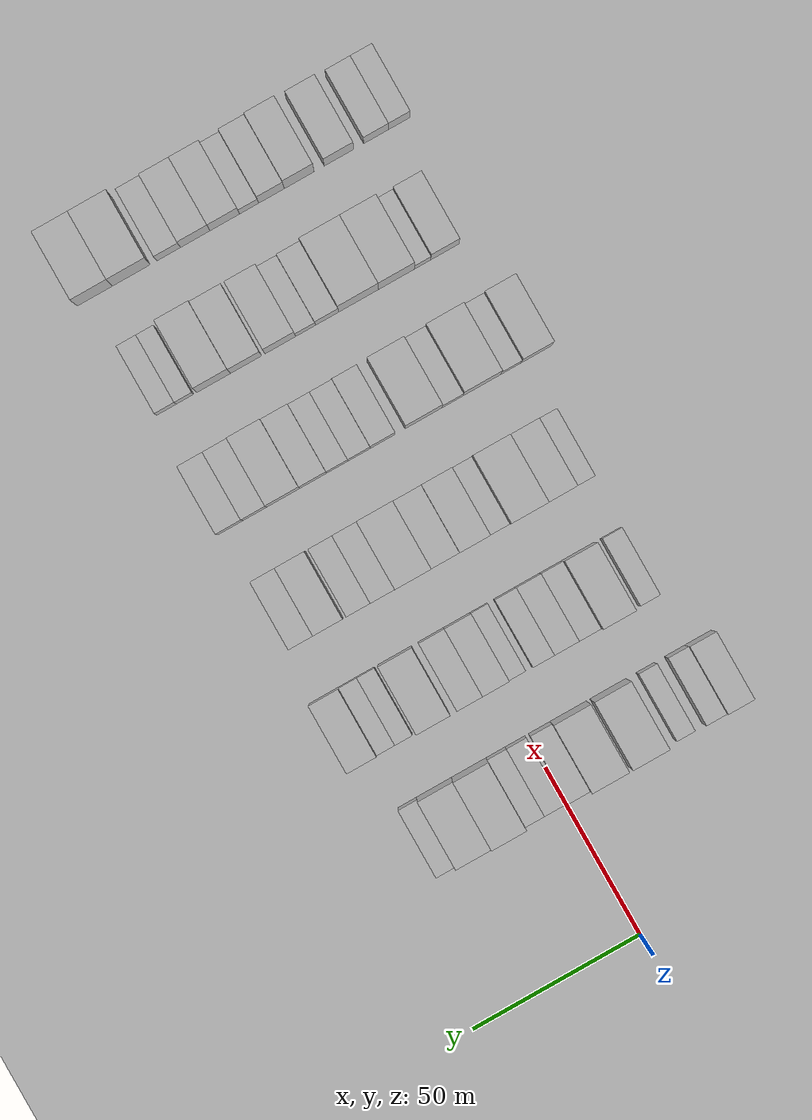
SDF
<sdf version="1.6">
 <world name="default">
  <include><name>ground_plane_1</name><uri>model://HANNAS_ground_plane</uri></include>
  <include>
   <name>ground_plane_2</name>
   <uri>model://HANNAS_ground_plane</uri>
   <pose>100 0 0  0 0 0</pose>
  </include>
  <model name="building_56">
   <static>1</static>
   <pose>50.0000 -51.3023 0 0.000000 0.000000 0.000000</pose>
   <link name="link">
    <pose>0 0 9.00 0 0 0</pose>
    <collision name="collision"><geometry><box><size>20.0000 7.8812 18.0000</size></box></geometry></collision>
    <visual name="visual">
     <cast_shadows>0</cast_shadows>
     <geometry><box><size>20.0000 7.8812 18.0000</size></box></geometry>
     <material>
      <script>
       <uri>model://HANNAS_wall/materials/scripts</uri>
       <uri>model://HANNAS_wall/materials/textures</uri>
       <name>vrc/HANNAS_wall</name>
      </script>
     </material>
    </visual>
   </link>
  </model>
  <model name="building_57">
   <static>1</static>
   <pose>50.0000 -44.3002 0 0.000000 0.000000 0.000000</pose>
   <link name="link">
    <pose>0 0 7.50 0 0 0</pose>
    <collision name="collision"><geometry><box><size>20.0000 6.1231 15.0000</size></box></geometry></collision>
    <visual name="visual">
     <cast_shadows>0</cast_shadows>
     <geometry><box><size>20.0000 6.1231 15.0000</size></box></geometry>
     <material>
      <script>
       <uri>model://HANNAS_wall/materials/scripts</uri>
       <uri>model://HANNAS_wall/materials/textures</uri>
       <name>vrc/HANNAS_wall</name>
      </script>
     </material>
    </visual>
   </link>
  </model>
  <model name="building_58">
   <static>1</static>
   <pose>50.0000 -35.5006 0 0.000000 0.000000 0.000000</pose>
   <link name="link">
    <pose>0 0 6.00 0 0 0</pose>
    <collision name="collision"><geometry><box><size>20.0000 5.4761 12.0000</size></box></geometry></collision>
    <visual name="visual">
     <cast_shadows>0</cast_shadows>
     <geometry><box><size>20.0000 5.4761 12.0000</size></box></geometry>
     <material>
      <script>
       <uri>model://HANNAS_wall/materials/scripts</uri>
       <uri>model://HANNAS_wall/materials/textures</uri>
       <name>vrc/HANNAS_wall</name>
      </script>
     </material>
    </visual>
   </link>
  </model>
  <model name="building_59">
   <static>1</static>
   <pose>50.0000 -24.3399 0 0.000000 0.000000 0.000000</pose>
   <link name="link">
    <pose>0 0 12.00 0 0 0</pose>
    <collision name="collision"><geometry><box><size>20.0000 10.8452 24.0000</size></box></geometry></collision>
    <visual name="visual">
     <cast_shadows>0</cast_shadows>
     <geometry><box><size>20.0000 10.8452 24.0000</size></box></geometry>
     <material>
      <script>
       <uri>model://HANNAS_wall/materials/scripts</uri>
       <uri>model://HANNAS_wall/materials/textures</uri>
       <name>vrc/HANNAS_wall</name>
      </script>
     </material>
    </visual>
   </link>
  </model>
  <model name="building_60">
   <static>1</static>
   <pose>50.0000 -12.4449 0 0.000000 0.000000 0.000000</pose>
   <link name="link">
    <pose>0 0 12.00 0 0 0</pose>
    <collision name="collision"><geometry><box><size>20.0000 10.9448 24.0000</size></box></geometry></collision>
    <visual name="visual">
     <cast_shadows>0</cast_shadows>
     <geometry><box><size>20.0000 10.9448 24.0000</size></box></geometry>
     <material>
      <script>
       <uri>model://HANNAS_wall/materials/scripts</uri>
       <uri>model://HANNAS_wall/materials/textures</uri>
       <name>vrc/HANNAS_wall</name>
      </script>
     </material>
    </visual>
   </link>
  </model>
  <model name="building_61">
   <static>1</static>
   <pose>50.0000 -3.7254 0 0.000000 0.000000 0.000000</pose>
   <link name="link">
    <pose>0 0 7.50 0 0 0</pose>
    <collision name="collision"><geometry><box><size>20.0000 6.4942 15.0000</size></box></geometry></collision>
    <visual name="visual">
     <cast_shadows>0</cast_shadows>
     <geometry><box><size>20.0000 6.4942 15.0000</size></box></geometry>
     <material>
      <script>
       <uri>model://HANNAS_wall/materials/scripts</uri>
       <uri>model://HANNAS_wall/materials/textures</uri>
       <name>vrc/HANNAS_wall</name>
      </script>
     </material>
    </visual>
   </link>
  </model>
  <model name="building_62">
   <static>1</static>
   <pose>50.0000 3.5018 0 0.000000 0.000000 0.000000</pose>
   <link name="link">
    <pose>0 0 6.00 0 0 0</pose>
    <collision name="collision"><geometry><box><size>20.0000 5.9601 12.0000</size></box></geometry></collision>
    <visual name="visual">
     <cast_shadows>0</cast_shadows>
     <geometry><box><size>20.0000 5.9601 12.0000</size></box></geometry>
     <material>
      <script>
       <uri>model://HANNAS_wall/materials/scripts</uri>
       <uri>model://HANNAS_wall/materials/textures</uri>
       <name>vrc/HANNAS_wall</name>
      </script>
     </material>
    </visual>
   </link>
  </model>
  <model name="building_63">
   <static>1</static>
   <pose>50.0000 9.3296 0 0.000000 0.000000 0.000000</pose>
   <link name="link">
    <pose>0 0 6.00 0 0 0</pose>
    <collision name="collision"><geometry><box><size>20.0000 5.6955 12.0000</size></box></geometry></collision>
    <visual name="visual">
     <cast_shadows>0</cast_shadows>
     <geometry><box><size>20.0000 5.6955 12.0000</size></box></geometry>
     <material>
      <script>
       <uri>model://HANNAS_wall/materials/scripts</uri>
       <uri>model://HANNAS_wall/materials/textures</uri>
       <name>vrc/HANNAS_wall</name>
      </script>
     </material>
    </visual>
   </link>
  </model>
  <model name="building_64">
   <static>1</static>
   <pose>50.0000 17.3628 0 0.000000 0.000000 0.000000</pose>
   <link name="link">
    <pose>0 0 12.00 0 0 0</pose>
    <collision name="collision"><geometry><box><size>20.0000 10.3709 24.0000</size></box></geometry></collision>
    <visual name="visual">
     <cast_shadows>0</cast_shadows>
     <geometry><box><size>20.0000 10.3709 24.0000</size></box></geometry>
     <material>
      <script>
       <uri>model://HANNAS_wall/materials/scripts</uri>
       <uri>model://HANNAS_wall/materials/textures</uri>
       <name>vrc/HANNAS_wall</name>
      </script>
     </material>
    </visual>
   </link>
  </model>
  <model name="building_65">
   <static>1</static>
   <pose>50.0000 27.7676 0 0.000000 0.000000 0.000000</pose>
   <link name="link">
    <pose>0 0 10.50 0 0 0</pose>
    <collision name="collision"><geometry><box><size>20.0000 10.4388 21.0000</size></box></geometry></collision>
    <visual name="visual">
     <cast_shadows>0</cast_shadows>
     <geometry><box><size>20.0000 10.4388 21.0000</size></box></geometry>
     <material>
      <script>
       <uri>model://HANNAS_wall/materials/scripts</uri>
       <uri>model://HANNAS_wall/materials/textures</uri>
       <name>vrc/HANNAS_wall</name>
      </script>
     </material>
    </visual>
   </link>
  </model>
  <model name="building_66">
   <static>1</static>
   <pose>50.0000 35.8073 0 0.000000 0.000000 0.000000</pose>
   <link name="link">
    <pose>0 0 6.00 0 0 0</pose>
    <collision name="collision"><geometry><box><size>20.0000 5.6406 12.0000</size></box></geometry></collision>
    <visual name="visual">
     <cast_shadows>0</cast_shadows>
     <geometry><box><size>20.0000 5.6406 12.0000</size></box></geometry>
     <material>
      <script>
       <uri>model://HANNAS_wall/materials/scripts</uri>
       <uri>model://HANNAS_wall/materials/textures</uri>
       <name>vrc/HANNAS_wall</name>
      </script>
     </material>
    </visual>
   </link>
  </model>
  <model name="building_189">
   <static>1</static>
   <pose>85.0000 -44.7876 0 0.000000 0.000000 0.000000</pose>
   <link name="link">
    <pose>0 0 6.00 0 0 0</pose>
    <collision name="collision"><geometry><box><size>20.0000 5.9261 12.0000</size></box></geometry></collision>
    <visual name="visual">
     <cast_shadows>0</cast_shadows>
     <geometry><box><size>20.0000 5.9261 12.0000</size></box></geometry>
     <material>
      <script>
       <uri>model://HANNAS_wall/materials/scripts</uri>
       <uri>model://HANNAS_wall/materials/textures</uri>
       <name>vrc/HANNAS_wall</name>
      </script>
     </material>
    </visual>
   </link>
  </model>
  <model name="building_190">
   <static>1</static>
   <pose>85.0000 -34.9461 0 0.000000 0.000000 0.000000</pose>
   <link name="link">
    <pose>0 0 12.00 0 0 0</pose>
    <collision name="collision"><geometry><box><size>20.0000 9.7570 24.0000</size></box></geometry></collision>
    <visual name="visual">
     <cast_shadows>0</cast_shadows>
     <geometry><box><size>20.0000 9.7570 24.0000</size></box></geometry>
     <material>
      <script>
       <uri>model://HANNAS_wall/materials/scripts</uri>
       <uri>model://HANNAS_wall/materials/textures</uri>
       <name>vrc/HANNAS_wall</name>
      </script>
     </material>
    </visual>
   </link>
  </model>
  <model name="building_191">
   <static>1</static>
   <pose>85.0000 -26.8211 0 0.000000 0.000000 0.000000</pose>
   <link name="link">
    <pose>0 0 7.50 0 0 0</pose>
    <collision name="collision"><geometry><box><size>20.0000 6.4931 15.0000</size></box></geometry></collision>
    <visual name="visual">
     <cast_shadows>0</cast_shadows>
     <geometry><box><size>20.0000 6.4931 15.0000</size></box></geometry>
     <material>
      <script>
       <uri>model://HANNAS_wall/materials/scripts</uri>
       <uri>model://HANNAS_wall/materials/textures</uri>
       <name>vrc/HANNAS_wall</name>
      </script>
     </material>
    </visual>
   </link>
  </model>
  <model name="building_192">
   <static>1</static>
   <pose>85.0000 -19.9076 0 0.000000 0.000000 0.000000</pose>
   <link name="link">
    <pose>0 0 7.50 0 0 0</pose>
    <collision name="collision"><geometry><box><size>20.0000 7.3338 15.0000</size></box></geometry></collision>
    <visual name="visual">
     <cast_shadows>0</cast_shadows>
     <geometry><box><size>20.0000 7.3338 15.0000</size></box></geometry>
     <material>
      <script>
       <uri>model://HANNAS_wall/materials/scripts</uri>
       <uri>model://HANNAS_wall/materials/textures</uri>
       <name>vrc/HANNAS_wall</name>
      </script>
     </material>
    </visual>
   </link>
  </model>
  <model name="building_193">
   <static>1</static>
   <pose>85.0000 -13.0487 0 0.000000 0.000000 0.000000</pose>
   <link name="link">
    <pose>0 0 7.50 0 0 0</pose>
    <collision name="collision"><geometry><box><size>20.0000 6.3840 15.0000</size></box></geometry></collision>
    <visual name="visual">
     <cast_shadows>0</cast_shadows>
     <geometry><box><size>20.0000 6.3840 15.0000</size></box></geometry>
     <material>
      <script>
       <uri>model://HANNAS_wall/materials/scripts</uri>
       <uri>model://HANNAS_wall/materials/textures</uri>
       <name>vrc/HANNAS_wall</name>
      </script>
     </material>
    </visual>
   </link>
  </model>
  <model name="building_194">
   <static>1</static>
   <pose>85.0000 -5.3381 0 0.000000 0.000000 0.000000</pose>
   <link name="link">
    <pose>0 0 6.00 0 0 0</pose>
    <collision name="collision"><geometry><box><size>20.0000 5.0373 12.0000</size></box></geometry></collision>
    <visual name="visual">
     <cast_shadows>0</cast_shadows>
     <geometry><box><size>20.0000 5.0373 12.0000</size></box></geometry>
     <material>
      <script>
       <uri>model://HANNAS_wall/materials/scripts</uri>
       <uri>model://HANNAS_wall/materials/textures</uri>
       <name>vrc/HANNAS_wall</name>
      </script>
     </material>
    </visual>
   </link>
  </model>
  <model name="building_195">
   <static>1</static>
   <pose>85.0000 1.1486 0 0.000000 0.000000 0.000000</pose>
   <link name="link">
    <pose>0 0 9.00 0 0 0</pose>
    <collision name="collision"><geometry><box><size>20.0000 7.9360 18.0000</size></box></geometry></collision>
    <visual name="visual">
     <cast_shadows>0</cast_shadows>
     <geometry><box><size>20.0000 7.9360 18.0000</size></box></geometry>
     <material>
      <script>
       <uri>model://HANNAS_wall/materials/scripts</uri>
       <uri>model://HANNAS_wall/materials/textures</uri>
       <name>vrc/HANNAS_wall</name>
      </script>
     </material>
    </visual>
   </link>
  </model>
  <model name="building_196">
   <static>1</static>
   <pose>85.0000 8.9107 0 0.000000 0.000000 0.000000</pose>
   <link name="link">
    <pose>0 0 9.00 0 0 0</pose>
    <collision name="collision"><geometry><box><size>20.0000 7.5881 18.0000</size></box></geometry></collision>
    <visual name="visual">
     <cast_shadows>0</cast_shadows>
     <geometry><box><size>20.0000 7.5881 18.0000</size></box></geometry>
     <material>
      <script>
       <uri>model://HANNAS_wall/materials/scripts</uri>
       <uri>model://HANNAS_wall/materials/textures</uri>
       <name>vrc/HANNAS_wall</name>
      </script>
     </material>
    </visual>
   </link>
  </model>
  <model name="building_197">
   <static>1</static>
   <pose>85.0000 19.7245 0 0.000000 0.000000 0.000000</pose>
   <link name="link">
    <pose>0 0 10.50 0 0 0</pose>
    <collision name="collision"><geometry><box><size>20.0000 10.0396 21.0000</size></box></geometry></collision>
    <visual name="visual">
     <cast_shadows>0</cast_shadows>
     <geometry><box><size>20.0000 10.0396 21.0000</size></box></geometry>
     <material>
      <script>
       <uri>model://HANNAS_wall/materials/scripts</uri>
       <uri>model://HANNAS_wall/materials/textures</uri>
       <name>vrc/HANNAS_wall</name>
      </script>
     </material>
    </visual>
   </link>
  </model>
  <model name="building_198">
   <static>1</static>
   <pose>85.0000 28.3742 0 0.000000 0.000000 0.000000</pose>
   <link name="link">
    <pose>0 0 6.00 0 0 0</pose>
    <collision name="collision"><geometry><box><size>20.0000 5.2596 12.0000</size></box></geometry></collision>
    <visual name="visual">
     <cast_shadows>0</cast_shadows>
     <geometry><box><size>20.0000 5.2596 12.0000</size></box></geometry>
     <material>
      <script>
       <uri>model://HANNAS_wall/materials/scripts</uri>
       <uri>model://HANNAS_wall/materials/textures</uri>
       <name>vrc/HANNAS_wall</name>
      </script>
     </material>
    </visual>
   </link>
  </model>
  <model name="building_199">
   <static>1</static>
   <pose>85.0000 33.7003 0 0.000000 0.000000 0.000000</pose>
   <link name="link">
    <pose>0 0 6.00 0 0 0</pose>
    <collision name="collision"><geometry><box><size>20.0000 5.3927 12.0000</size></box></geometry></collision>
    <visual name="visual">
     <cast_shadows>0</cast_shadows>
     <geometry><box><size>20.0000 5.3927 12.0000</size></box></geometry>
     <material>
      <script>
       <uri>model://HANNAS_wall/materials/scripts</uri>
       <uri>model://HANNAS_wall/materials/textures</uri>
       <name>vrc/HANNAS_wall</name>
      </script>
     </material>
    </visual>
   </link>
  </model>
  <model name="building_200">
   <static>1</static>
   <pose>85.0000 40.8074 0 0.000000 0.000000 0.000000</pose>
   <link name="link">
    <pose>0 0 9.00 0 0 0</pose>
    <collision name="collision"><geometry><box><size>20.0000 8.8215 18.0000</size></box></geometry></collision>
    <visual name="visual">
     <cast_shadows>0</cast_shadows>
     <geometry><box><size>20.0000 8.8215 18.0000</size></box></geometry>
     <material>
      <script>
       <uri>model://HANNAS_wall/materials/scripts</uri>
       <uri>model://HANNAS_wall/materials/textures</uri>
       <name>vrc/HANNAS_wall</name>
      </script>
     </material>
    </visual>
   </link>
  </model>
  <model name="building_311">
   <static>1</static>
   <pose>120.0000 -45.5590 0 0.000000 0.000000 0.000000</pose>
   <link name="link">
    <pose>0 0 6.00 0 0 0</pose>
    <collision name="collision"><geometry><box><size>20.0000 5.4686 12.0000</size></box></geometry></collision>
    <visual name="visual">
     <cast_shadows>0</cast_shadows>
     <geometry><box><size>20.0000 5.4686 12.0000</size></box></geometry>
     <material>
      <script>
       <uri>model://HANNAS_wall/materials/scripts</uri>
       <uri>model://HANNAS_wall/materials/textures</uri>
       <name>vrc/HANNAS_wall</name>
      </script>
     </material>
    </visual>
   </link>
  </model>
  <model name="building_312">
   <static>1</static>
   <pose>120.0000 -38.4567 0 0.000000 0.000000 0.000000</pose>
   <link name="link">
    <pose>0 0 9.00 0 0 0</pose>
    <collision name="collision"><geometry><box><size>20.0000 8.7360 18.0000</size></box></geometry></collision>
    <visual name="visual">
     <cast_shadows>0</cast_shadows>
     <geometry><box><size>20.0000 8.7360 18.0000</size></box></geometry>
     <material>
      <script>
       <uri>model://HANNAS_wall/materials/scripts</uri>
       <uri>model://HANNAS_wall/materials/textures</uri>
       <name>vrc/HANNAS_wall</name>
      </script>
     </material>
    </visual>
   </link>
  </model>
  <model name="building_313">
   <static>1</static>
   <pose>120.0000 -28.5551 0 0.000000 0.000000 0.000000</pose>
   <link name="link">
    <pose>0 0 12.00 0 0 0</pose>
    <collision name="collision"><geometry><box><size>20.0000 11.0670 24.0000</size></box></geometry></collision>
    <visual name="visual">
     <cast_shadows>0</cast_shadows>
     <geometry><box><size>20.0000 11.0670 24.0000</size></box></geometry>
     <material>
      <script>
       <uri>model://HANNAS_wall/materials/scripts</uri>
       <uri>model://HANNAS_wall/materials/textures</uri>
       <name>vrc/HANNAS_wall</name>
      </script>
     </material>
    </visual>
   </link>
  </model>
  <model name="building_314">
   <static>1</static>
   <pose>120.0000 -20.0378 0 0.000000 0.000000 0.000000</pose>
   <link name="link">
    <pose>0 0 6.00 0 0 0</pose>
    <collision name="collision"><geometry><box><size>20.0000 5.9676 12.0000</size></box></geometry></collision>
    <visual name="visual">
     <cast_shadows>0</cast_shadows>
     <geometry><box><size>20.0000 5.9676 12.0000</size></box></geometry>
     <material>
      <script>
       <uri>model://HANNAS_wall/materials/scripts</uri>
       <uri>model://HANNAS_wall/materials/textures</uri>
       <name>vrc/HANNAS_wall</name>
      </script>
     </material>
    </visual>
   </link>
  </model>
  <model name="building_315">
   <static>1</static>
   <pose>120.0000 -12.5089 0 0.000000 0.000000 0.000000</pose>
   <link name="link">
    <pose>0 0 10.50 0 0 0</pose>
    <collision name="collision"><geometry><box><size>20.0000 9.0902 21.0000</size></box></geometry></collision>
    <visual name="visual">
     <cast_shadows>0</cast_shadows>
     <geometry><box><size>20.0000 9.0902 21.0000</size></box></geometry>
     <material>
      <script>
       <uri>model://HANNAS_wall/materials/scripts</uri>
       <uri>model://HANNAS_wall/materials/textures</uri>
       <name>vrc/HANNAS_wall</name>
      </script>
     </material>
    </visual>
   </link>
  </model>
  <model name="building_316">
   <static>1</static>
   <pose>120.0000 -3.7594 0 0.000000 0.000000 0.000000</pose>
   <link name="link">
    <pose>0 0 9.00 0 0 0</pose>
    <collision name="collision"><geometry><box><size>20.0000 8.4089 18.0000</size></box></geometry></collision>
    <visual name="visual">
     <cast_shadows>0</cast_shadows>
     <geometry><box><size>20.0000 8.4089 18.0000</size></box></geometry>
     <material>
      <script>
       <uri>model://HANNAS_wall/materials/scripts</uri>
       <uri>model://HANNAS_wall/materials/textures</uri>
       <name>vrc/HANNAS_wall</name>
      </script>
     </material>
    </visual>
   </link>
  </model>
  <model name="building_317">
   <static>1</static>
   <pose>120.0000 5.7895 0 0.000000 0.000000 0.000000</pose>
   <link name="link">
    <pose>0 0 12.00 0 0 0</pose>
    <collision name="collision"><geometry><box><size>20.0000 10.6891 24.0000</size></box></geometry></collision>
    <visual name="visual">
     <cast_shadows>0</cast_shadows>
     <geometry><box><size>20.0000 10.6891 24.0000</size></box></geometry>
     <material>
      <script>
       <uri>model://HANNAS_wall/materials/scripts</uri>
       <uri>model://HANNAS_wall/materials/textures</uri>
       <name>vrc/HANNAS_wall</name>
      </script>
     </material>
    </visual>
   </link>
  </model>
  <model name="building_318">
   <static>1</static>
   <pose>120.0000 14.7538 0 0.000000 0.000000 0.000000</pose>
   <link name="link">
    <pose>0 0 9.00 0 0 0</pose>
    <collision name="collision"><geometry><box><size>20.0000 7.2395 18.0000</size></box></geometry></collision>
    <visual name="visual">
     <cast_shadows>0</cast_shadows>
     <geometry><box><size>20.0000 7.2395 18.0000</size></box></geometry>
     <material>
      <script>
       <uri>model://HANNAS_wall/materials/scripts</uri>
       <uri>model://HANNAS_wall/materials/textures</uri>
       <name>vrc/HANNAS_wall</name>
      </script>
     </material>
    </visual>
   </link>
  </model>
  <model name="building_319">
   <static>1</static>
   <pose>120.0000 21.9428 0 0.000000 0.000000 0.000000</pose>
   <link name="link">
    <pose>0 0 7.50 0 0 0</pose>
    <collision name="collision"><geometry><box><size>20.0000 7.1385 15.0000</size></box></geometry></collision>
    <visual name="visual">
     <cast_shadows>0</cast_shadows>
     <geometry><box><size>20.0000 7.1385 15.0000</size></box></geometry>
     <material>
      <script>
       <uri>model://HANNAS_wall/materials/scripts</uri>
       <uri>model://HANNAS_wall/materials/textures</uri>
       <name>vrc/HANNAS_wall</name>
      </script>
     </material>
    </visual>
   </link>
  </model>
  <model name="building_320">
   <static>1</static>
   <pose>120.0000 30.9087 0 0.000000 0.000000 0.000000</pose>
   <link name="link">
    <pose>0 0 9.00 0 0 0</pose>
    <collision name="collision"><geometry><box><size>20.0000 8.7934 18.0000</size></box></geometry></collision>
    <visual name="visual">
     <cast_shadows>0</cast_shadows>
     <geometry><box><size>20.0000 8.7934 18.0000</size></box></geometry>
     <material>
      <script>
       <uri>model://HANNAS_wall/materials/scripts</uri>
       <uri>model://HANNAS_wall/materials/textures</uri>
       <name>vrc/HANNAS_wall</name>
      </script>
     </material>
    </visual>
   </link>
  </model>
  <model name="building_321">
   <static>1</static>
   <pose>120.0000 38.9182 0 0.000000 0.000000 0.000000</pose>
   <link name="link">
    <pose>0 0 9.00 0 0 0</pose>
    <collision name="collision"><geometry><box><size>20.0000 7.2255 18.0000</size></box></geometry></collision>
    <visual name="visual">
     <cast_shadows>0</cast_shadows>
     <geometry><box><size>20.0000 7.2255 18.0000</size></box></geometry>
     <material>
      <script>
       <uri>model://HANNAS_wall/materials/scripts</uri>
       <uri>model://HANNAS_wall/materials/textures</uri>
       <name>vrc/HANNAS_wall</name>
      </script>
     </material>
    </visual>
   </link>
  </model>
  <model name="building_440">
   <static>1</static>
   <pose>155.0000 -51.0554 0 0.000000 0.000000 0.000000</pose>
   <link name="link">
    <pose>0 0 10.50 0 0 0</pose>
    <collision name="collision"><geometry><box><size>20.0000 9.1883 21.0000</size></box></geometry></collision>
    <visual name="visual">
     <cast_shadows>0</cast_shadows>
     <geometry><box><size>20.0000 9.1883 21.0000</size></box></geometry>
     <material>
      <script>
       <uri>model://HANNAS_wall/materials/scripts</uri>
       <uri>model://HANNAS_wall/materials/textures</uri>
       <name>vrc/HANNAS_wall</name>
      </script>
     </material>
    </visual>
   </link>
  </model>
  <model name="building_441">
   <static>1</static>
   <pose>155.0000 -43.3997 0 0.000000 0.000000 0.000000</pose>
   <link name="link">
    <pose>0 0 7.50 0 0 0</pose>
    <collision name="collision"><geometry><box><size>20.0000 6.1233 15.0000</size></box></geometry></collision>
    <visual name="visual">
     <cast_shadows>0</cast_shadows>
     <geometry><box><size>20.0000 6.1233 15.0000</size></box></geometry>
     <material>
      <script>
       <uri>model://HANNAS_wall/materials/scripts</uri>
       <uri>model://HANNAS_wall/materials/textures</uri>
       <name>vrc/HANNAS_wall</name>
      </script>
     </material>
    </visual>
   </link>
  </model>
  <model name="building_442">
   <static>1</static>
   <pose>155.0000 -34.7409 0 0.000000 0.000000 0.000000</pose>
   <link name="link">
    <pose>0 0 12.00 0 0 0</pose>
    <collision name="collision"><geometry><box><size>20.0000 11.1942 24.0000</size></box></geometry></collision>
    <visual name="visual">
     <cast_shadows>0</cast_shadows>
     <geometry><box><size>20.0000 11.1942 24.0000</size></box></geometry>
     <material>
      <script>
       <uri>model://HANNAS_wall/materials/scripts</uri>
       <uri>model://HANNAS_wall/materials/textures</uri>
       <name>vrc/HANNAS_wall</name>
      </script>
     </material>
    </visual>
   </link>
  </model>
  <model name="building_443">
   <static>1</static>
   <pose>155.0000 -25.9737 0 0.000000 0.000000 0.000000</pose>
   <link name="link">
    <pose>0 0 7.50 0 0 0</pose>
    <collision name="collision"><geometry><box><size>20.0000 6.3401 15.0000</size></box></geometry></collision>
    <visual name="visual">
     <cast_shadows>0</cast_shadows>
     <geometry><box><size>20.0000 6.3401 15.0000</size></box></geometry>
     <material>
      <script>
       <uri>model://HANNAS_wall/materials/scripts</uri>
       <uri>model://HANNAS_wall/materials/textures</uri>
       <name>vrc/HANNAS_wall</name>
      </script>
     </material>
    </visual>
   </link>
  </model>
  <model name="building_444">
   <static>1</static>
   <pose>155.0000 -17.3072 0 0.000000 0.000000 0.000000</pose>
   <link name="link">
    <pose>0 0 12.00 0 0 0</pose>
    <collision name="collision"><geometry><box><size>20.0000 10.9928 24.0000</size></box></geometry></collision>
    <visual name="visual">
     <cast_shadows>0</cast_shadows>
     <geometry><box><size>20.0000 10.9928 24.0000</size></box></geometry>
     <material>
      <script>
       <uri>model://HANNAS_wall/materials/scripts</uri>
       <uri>model://HANNAS_wall/materials/textures</uri>
       <name>vrc/HANNAS_wall</name>
      </script>
     </material>
    </visual>
   </link>
  </model>
  <model name="building_445">
   <static>1</static>
   <pose>155.0000 -5.1150 0 0.000000 0.000000 0.000000</pose>
   <link name="link">
    <pose>0 0 9.00 0 0 0</pose>
    <collision name="collision"><geometry><box><size>20.0000 7.3916 18.0000</size></box></geometry></collision>
    <visual name="visual">
     <cast_shadows>0</cast_shadows>
     <geometry><box><size>20.0000 7.3916 18.0000</size></box></geometry>
     <material>
      <script>
       <uri>model://HANNAS_wall/materials/scripts</uri>
       <uri>model://HANNAS_wall/materials/textures</uri>
       <name>vrc/HANNAS_wall</name>
      </script>
     </material>
    </visual>
   </link>
  </model>
  <model name="building_446">
   <static>1</static>
   <pose>155.0000 1.9009 0 0.000000 0.000000 0.000000</pose>
   <link name="link">
    <pose>0 0 7.50 0 0 0</pose>
    <collision name="collision"><geometry><box><size>20.0000 6.6403 15.0000</size></box></geometry></collision>
    <visual name="visual">
     <cast_shadows>0</cast_shadows>
     <geometry><box><size>20.0000 6.6403 15.0000</size></box></geometry>
     <material>
      <script>
       <uri>model://HANNAS_wall/materials/scripts</uri>
       <uri>model://HANNAS_wall/materials/textures</uri>
       <name>vrc/HANNAS_wall</name>
      </script>
     </material>
    </visual>
   </link>
  </model>
  <model name="building_447">
   <static>1</static>
   <pose>155.0000 8.4166 0 0.000000 0.000000 0.000000</pose>
   <link name="link">
    <pose>0 0 7.50 0 0 0</pose>
    <collision name="collision"><geometry><box><size>20.0000 6.3911 15.0000</size></box></geometry></collision>
    <visual name="visual">
     <cast_shadows>0</cast_shadows>
     <geometry><box><size>20.0000 6.3911 15.0000</size></box></geometry>
     <material>
      <script>
       <uri>model://HANNAS_wall/materials/scripts</uri>
       <uri>model://HANNAS_wall/materials/textures</uri>
       <name>vrc/HANNAS_wall</name>
      </script>
     </material>
    </visual>
   </link>
  </model>
  <model name="building_448">
   <static>1</static>
   <pose>155.0000 15.6134 0 0.000000 0.000000 0.000000</pose>
   <link name="link">
    <pose>0 0 9.00 0 0 0</pose>
    <collision name="collision"><geometry><box><size>20.0000 8.0024 18.0000</size></box></geometry></collision>
    <visual name="visual">
     <cast_shadows>0</cast_shadows>
     <geometry><box><size>20.0000 8.0024 18.0000</size></box></geometry>
     <material>
      <script>
       <uri>model://HANNAS_wall/materials/scripts</uri>
       <uri>model://HANNAS_wall/materials/textures</uri>
       <name>vrc/HANNAS_wall</name>
      </script>
     </material>
    </visual>
   </link>
  </model>
  <model name="building_449">
   <static>1</static>
   <pose>155.0000 24.5502 0 0.000000 0.000000 0.000000</pose>
   <link name="link">
    <pose>0 0 10.50 0 0 0</pose>
    <collision name="collision"><geometry><box><size>20.0000 9.8712 21.0000</size></box></geometry></collision>
    <visual name="visual">
     <cast_shadows>0</cast_shadows>
     <geometry><box><size>20.0000 9.8712 21.0000</size></box></geometry>
     <material>
      <script>
       <uri>model://HANNAS_wall/materials/scripts</uri>
       <uri>model://HANNAS_wall/materials/textures</uri>
       <name>vrc/HANNAS_wall</name>
      </script>
     </material>
    </visual>
   </link>
  </model>
  <model name="building_450">
   <static>1</static>
   <pose>155.0000 33.0891 0 0.000000 0.000000 0.000000</pose>
   <link name="link">
    <pose>0 0 9.00 0 0 0</pose>
    <collision name="collision"><geometry><box><size>20.0000 7.2066 18.0000</size></box></geometry></collision>
    <visual name="visual">
     <cast_shadows>0</cast_shadows>
     <geometry><box><size>20.0000 7.2066 18.0000</size></box></geometry>
     <material>
      <script>
       <uri>model://HANNAS_wall/materials/scripts</uri>
       <uri>model://HANNAS_wall/materials/textures</uri>
       <name>vrc/HANNAS_wall</name>
      </script>
     </material>
    </visual>
   </link>
  </model>
  <model name="building_451">
   <static>1</static>
   <pose>155.0000 40.4350 0 0.000000 0.000000 0.000000</pose>
   <link name="link">
    <pose>0 0 9.00 0 0 0</pose>
    <collision name="collision"><geometry><box><size>20.0000 7.4853 18.0000</size></box></geometry></collision>
    <visual name="visual">
     <cast_shadows>0</cast_shadows>
     <geometry><box><size>20.0000 7.4853 18.0000</size></box></geometry>
     <material>
      <script>
       <uri>model://HANNAS_wall/materials/scripts</uri>
       <uri>model://HANNAS_wall/materials/textures</uri>
       <name>vrc/HANNAS_wall</name>
      </script>
     </material>
    </visual>
   </link>
  </model>
  <model name="building_576">
   <static>1</static>
   <pose>190.0000 -43.5626 0 0.000000 0.000000 0.000000</pose>
   <link name="link">
    <pose>0 0 9.00 0 0 0</pose>
    <collision name="collision"><geometry><box><size>20.0000 8.4308 18.0000</size></box></geometry></collision>
    <visual name="visual">
     <cast_shadows>0</cast_shadows>
     <geometry><box><size>20.0000 8.4308 18.0000</size></box></geometry>
     <material>
      <script>
       <uri>model://HANNAS_wall/materials/scripts</uri>
       <uri>model://HANNAS_wall/materials/textures</uri>
       <name>vrc/HANNAS_wall</name>
      </script>
     </material>
    </visual>
   </link>
  </model>
  <model name="building_577">
   <static>1</static>
   <pose>190.0000 -36.8787 0 0.000000 0.000000 0.000000</pose>
   <link name="link">
    <pose>0 0 6.00 0 0 0</pose>
    <collision name="collision"><geometry><box><size>20.0000 4.9370 12.0000</size></box></geometry></collision>
    <visual name="visual">
     <cast_shadows>0</cast_shadows>
     <geometry><box><size>20.0000 4.9370 12.0000</size></box></geometry>
     <material>
      <script>
       <uri>model://HANNAS_wall/materials/scripts</uri>
       <uri>model://HANNAS_wall/materials/textures</uri>
       <name>vrc/HANNAS_wall</name>
      </script>
     </material>
    </visual>
   </link>
  </model>
  <model name="building_578">
   <static>1</static>
   <pose>190.0000 -29.0571 0 0.000000 0.000000 0.000000</pose>
   <link name="link">
    <pose>0 0 12.00 0 0 0</pose>
    <collision name="collision"><geometry><box><size>20.0000 10.7062 24.0000</size></box></geometry></collision>
    <visual name="visual">
     <cast_shadows>0</cast_shadows>
     <geometry><box><size>20.0000 10.7062 24.0000</size></box></geometry>
     <material>
      <script>
       <uri>model://HANNAS_wall/materials/scripts</uri>
       <uri>model://HANNAS_wall/materials/textures</uri>
       <name>vrc/HANNAS_wall</name>
      </script>
     </material>
    </visual>
   </link>
  </model>
  <model name="building_579">
   <static>1</static>
   <pose>190.0000 -17.7384 0 0.000000 0.000000 0.000000</pose>
   <link name="link">
    <pose>0 0 12.00 0 0 0</pose>
    <collision name="collision"><geometry><box><size>20.0000 11.9311 24.0000</size></box></geometry></collision>
    <visual name="visual">
     <cast_shadows>0</cast_shadows>
     <geometry><box><size>20.0000 11.9311 24.0000</size></box></geometry>
     <material>
      <script>
       <uri>model://HANNAS_wall/materials/scripts</uri>
       <uri>model://HANNAS_wall/materials/textures</uri>
       <name>vrc/HANNAS_wall</name>
      </script>
     </material>
    </visual>
   </link>
  </model>
  <model name="building_580">
   <static>1</static>
   <pose>190.0000 -8.3005 0 0.000000 0.000000 0.000000</pose>
   <link name="link">
    <pose>0 0 7.50 0 0 0</pose>
    <collision name="collision"><geometry><box><size>20.0000 6.9447 15.0000</size></box></geometry></collision>
    <visual name="visual">
     <cast_shadows>0</cast_shadows>
     <geometry><box><size>20.0000 6.9447 15.0000</size></box></geometry>
     <material>
      <script>
       <uri>model://HANNAS_wall/materials/scripts</uri>
       <uri>model://HANNAS_wall/materials/textures</uri>
       <name>vrc/HANNAS_wall</name>
      </script>
     </material>
    </visual>
   </link>
  </model>
  <model name="building_581">
   <static>1</static>
   <pose>190.0000 -1.8567 0 0.000000 0.000000 0.000000</pose>
   <link name="link">
    <pose>0 0 6.00 0 0 0</pose>
    <collision name="collision"><geometry><box><size>20.0000 5.9429 12.0000</size></box></geometry></collision>
    <visual name="visual">
     <cast_shadows>0</cast_shadows>
     <geometry><box><size>20.0000 5.9429 12.0000</size></box></geometry>
     <material>
      <script>
       <uri>model://HANNAS_wall/materials/scripts</uri>
       <uri>model://HANNAS_wall/materials/textures</uri>
       <name>vrc/HANNAS_wall</name>
      </script>
     </material>
    </visual>
   </link>
  </model>
  <model name="building_582">
   <static>1</static>
   <pose>190.0000 5.7015 0 0.000000 0.000000 0.000000</pose>
   <link name="link">
    <pose>0 0 10.50 0 0 0</pose>
    <collision name="collision"><geometry><box><size>20.0000 9.1736 21.0000</size></box></geometry></collision>
    <visual name="visual">
     <cast_shadows>0</cast_shadows>
     <geometry><box><size>20.0000 9.1736 21.0000</size></box></geometry>
     <material>
      <script>
       <uri>model://HANNAS_wall/materials/scripts</uri>
       <uri>model://HANNAS_wall/materials/textures</uri>
       <name>vrc/HANNAS_wall</name>
      </script>
     </material>
    </visual>
   </link>
  </model>
  <model name="building_583">
   <static>1</static>
   <pose>190.0000 15.9421 0 0.000000 0.000000 0.000000</pose>
   <link name="link">
    <pose>0 0 10.50 0 0 0</pose>
    <collision name="collision"><geometry><box><size>20.0000 9.3076 21.0000</size></box></geometry></collision>
    <visual name="visual">
     <cast_shadows>0</cast_shadows>
     <geometry><box><size>20.0000 9.3076 21.0000</size></box></geometry>
     <material>
      <script>
       <uri>model://HANNAS_wall/materials/scripts</uri>
       <uri>model://HANNAS_wall/materials/textures</uri>
       <name>vrc/HANNAS_wall</name>
      </script>
     </material>
    </visual>
   </link>
  </model>
  <model name="building_584">
   <static>1</static>
   <pose>190.0000 25.6205 0 0.000000 0.000000 0.000000</pose>
   <link name="link">
    <pose>0 0 12.00 0 0 0</pose>
    <collision name="collision"><geometry><box><size>20.0000 10.0492 24.0000</size></box></geometry></collision>
    <visual name="visual">
     <cast_shadows>0</cast_shadows>
     <geometry><box><size>20.0000 10.0492 24.0000</size></box></geometry>
     <material>
      <script>
       <uri>model://HANNAS_wall/materials/scripts</uri>
       <uri>model://HANNAS_wall/materials/textures</uri>
       <name>vrc/HANNAS_wall</name>
      </script>
     </material>
    </visual>
   </link>
  </model>
  <model name="building_585">
   <static>1</static>
   <pose>190.0000 34.2471 0 0.000000 0.000000 0.000000</pose>
   <link name="link">
    <pose>0 0 6.00 0 0 0</pose>
    <collision name="collision"><geometry><box><size>20.0000 5.2040 12.0000</size></box></geometry></collision>
    <visual name="visual">
     <cast_shadows>0</cast_shadows>
     <geometry><box><size>20.0000 5.2040 12.0000</size></box></geometry>
     <material>
      <script>
       <uri>model://HANNAS_wall/materials/scripts</uri>
       <uri>model://HANNAS_wall/materials/textures</uri>
       <name>vrc/HANNAS_wall</name>
      </script>
     </material>
    </visual>
   </link>
  </model>
  <model name="building_586">
   <static>1</static>
   <pose>190.0000 39.7811 0 0.000000 0.000000 0.000000</pose>
   <link name="link">
    <pose>0 0 6.00 0 0 0</pose>
    <collision name="collision"><geometry><box><size>20.0000 5.8639 12.0000</size></box></geometry></collision>
    <visual name="visual">
     <cast_shadows>0</cast_shadows>
     <geometry><box><size>20.0000 5.8639 12.0000</size></box></geometry>
     <material>
      <script>
       <uri>model://HANNAS_wall/materials/scripts</uri>
       <uri>model://HANNAS_wall/materials/textures</uri>
       <name>vrc/HANNAS_wall</name>
      </script>
     </material>
    </visual>
   </link>
  </model>
  <model name="building_697">
   <static>1</static>
   <pose>225.0000 -49.7849 0 0.000000 0.000000 0.000000</pose>
   <link name="link">
    <pose>0 0 7.50 0 0 0</pose>
    <collision name="collision"><geometry><box><size>20.0000 6.4155 15.0000</size></box></geometry></collision>
    <visual name="visual">
     <cast_shadows>0</cast_shadows>
     <geometry><box><size>20.0000 6.4155 15.0000</size></box></geometry>
     <material>
      <script>
       <uri>model://HANNAS_wall/materials/scripts</uri>
       <uri>model://HANNAS_wall/materials/textures</uri>
       <name>vrc/HANNAS_wall</name>
      </script>
     </material>
    </visual>
   </link>
  </model>
  <model name="building_698">
   <static>1</static>
   <pose>225.0000 -42.8376 0 0.000000 0.000000 0.000000</pose>
   <link name="link">
    <pose>0 0 7.50 0 0 0</pose>
    <collision name="collision"><geometry><box><size>20.0000 7.4789 15.0000</size></box></geometry></collision>
    <visual name="visual">
     <cast_shadows>0</cast_shadows>
     <geometry><box><size>20.0000 7.4789 15.0000</size></box></geometry>
     <material>
      <script>
       <uri>model://HANNAS_wall/materials/scripts</uri>
       <uri>model://HANNAS_wall/materials/textures</uri>
       <name>vrc/HANNAS_wall</name>
      </script>
     </material>
    </visual>
   </link>
  </model>
  <model name="building_699">
   <static>1</static>
   <pose>225.0000 -31.6937 0 0.000000 0.000000 0.000000</pose>
   <link name="link">
    <pose>0 0 9.00 0 0 0</pose>
    <collision name="collision"><geometry><box><size>20.0000 8.8090 18.0000</size></box></geometry></collision>
    <visual name="visual">
     <cast_shadows>0</cast_shadows>
     <geometry><box><size>20.0000 8.8090 18.0000</size></box></geometry>
     <material>
      <script>
       <uri>model://HANNAS_wall/materials/scripts</uri>
       <uri>model://HANNAS_wall/materials/textures</uri>
       <name>vrc/HANNAS_wall</name>
      </script>
     </material>
    </visual>
   </link>
  </model>
  <model name="building_700">
   <static>1</static>
   <pose>225.0000 -19.8062 0 0.000000 0.000000 0.000000</pose>
   <link name="link">
    <pose>0 0 10.50 0 0 0</pose>
    <collision name="collision"><geometry><box><size>20.0000 8.9658 21.0000</size></box></geometry></collision>
    <visual name="visual">
     <cast_shadows>0</cast_shadows>
     <geometry><box><size>20.0000 8.9658 21.0000</size></box></geometry>
     <material>
      <script>
       <uri>model://HANNAS_wall/materials/scripts</uri>
       <uri>model://HANNAS_wall/materials/textures</uri>
       <name>vrc/HANNAS_wall</name>
      </script>
     </material>
    </visual>
   </link>
  </model>
  <model name="building_701">
   <static>1</static>
   <pose>225.0000 -11.4830 0 0.000000 0.000000 0.000000</pose>
   <link name="link">
    <pose>0 0 9.00 0 0 0</pose>
    <collision name="collision"><geometry><box><size>20.0000 7.6807 18.0000</size></box></geometry></collision>
    <visual name="visual">
     <cast_shadows>0</cast_shadows>
     <geometry><box><size>20.0000 7.6807 18.0000</size></box></geometry>
     <material>
      <script>
       <uri>model://HANNAS_wall/materials/scripts</uri>
       <uri>model://HANNAS_wall/materials/textures</uri>
       <name>vrc/HANNAS_wall</name>
      </script>
     </material>
    </visual>
   </link>
  </model>
  <model name="building_702">
   <static>1</static>
   <pose>225.0000 -4.7768 0 0.000000 0.000000 0.000000</pose>
   <link name="link">
    <pose>0 0 6.00 0 0 0</pose>
    <collision name="collision"><geometry><box><size>20.0000 5.7316 12.0000</size></box></geometry></collision>
    <visual name="visual">
     <cast_shadows>0</cast_shadows>
     <geometry><box><size>20.0000 5.7316 12.0000</size></box></geometry>
     <material>
      <script>
       <uri>model://HANNAS_wall/materials/scripts</uri>
       <uri>model://HANNAS_wall/materials/textures</uri>
       <name>vrc/HANNAS_wall</name>
      </script>
     </material>
    </visual>
   </link>
  </model>
  <model name="building_703">
   <static>1</static>
   <pose>225.0000 2.5052 0 0.000000 0.000000 0.000000</pose>
   <link name="link">
    <pose>0 0 9.00 0 0 0</pose>
    <collision name="collision"><geometry><box><size>20.0000 8.8325 18.0000</size></box></geometry></collision>
    <visual name="visual">
     <cast_shadows>0</cast_shadows>
     <geometry><box><size>20.0000 8.8325 18.0000</size></box></geometry>
     <material>
      <script>
       <uri>model://HANNAS_wall/materials/scripts</uri>
       <uri>model://HANNAS_wall/materials/textures</uri>
       <name>vrc/HANNAS_wall</name>
      </script>
     </material>
    </visual>
   </link>
  </model>
  <model name="building_704">
   <static>1</static>
   <pose>225.0000 11.3438 0 0.000000 0.000000 0.000000</pose>
   <link name="link">
    <pose>0 0 9.00 0 0 0</pose>
    <collision name="collision"><geometry><box><size>20.0000 8.8447 18.0000</size></box></geometry></collision>
    <visual name="visual">
     <cast_shadows>0</cast_shadows>
     <geometry><box><size>20.0000 8.8447 18.0000</size></box></geometry>
     <material>
      <script>
       <uri>model://HANNAS_wall/materials/scripts</uri>
       <uri>model://HANNAS_wall/materials/textures</uri>
       <name>vrc/HANNAS_wall</name>
      </script>
     </material>
    </visual>
   </link>
  </model>
  <model name="building_705">
   <static>1</static>
   <pose>225.0000 19.3060 0 0.000000 0.000000 0.000000</pose>
   <link name="link">
    <pose>0 0 7.50 0 0 0</pose>
    <collision name="collision"><geometry><box><size>20.0000 7.0797 15.0000</size></box></geometry></collision>
    <visual name="visual">
     <cast_shadows>0</cast_shadows>
     <geometry><box><size>20.0000 7.0797 15.0000</size></box></geometry>
     <material>
      <script>
       <uri>model://HANNAS_wall/materials/scripts</uri>
       <uri>model://HANNAS_wall/materials/textures</uri>
       <name>vrc/HANNAS_wall</name>
      </script>
     </material>
    </visual>
   </link>
  </model>
  <model name="building_706">
   <static>1</static>
   <pose>225.0000 30.4592 0 0.000000 0.000000 0.000000</pose>
   <link name="link">
    <pose>0 0 12.00 0 0 0</pose>
    <collision name="collision"><geometry><box><size>20.0000 11.2267 24.0000</size></box></geometry></collision>
    <visual name="visual">
     <cast_shadows>0</cast_shadows>
     <geometry><box><size>20.0000 11.2267 24.0000</size></box></geometry>
     <material>
      <script>
       <uri>model://HANNAS_wall/materials/scripts</uri>
       <uri>model://HANNAS_wall/materials/textures</uri>
       <name>vrc/HANNAS_wall</name>
      </script>
     </material>
    </visual>
   </link>
  </model>
  <model name="building_707">
   <static>1</static>
   <pose>225.0000 41.3630 0 0.000000 0.000000 0.000000</pose>
   <link name="link">
    <pose>0 0 12.00 0 0 0</pose>
    <collision name="collision"><geometry><box><size>20.0000 10.5809 24.0000</size></box></geometry></collision>
    <visual name="visual">
     <cast_shadows>0</cast_shadows>
     <geometry><box><size>20.0000 10.5809 24.0000</size></box></geometry>
     <material>
      <script>
       <uri>model://HANNAS_wall/materials/scripts</uri>
       <uri>model://HANNAS_wall/materials/textures</uri>
       <name>vrc/HANNAS_wall</name>
      </script>
     </material>
    </visual>
   </link>
  </model>
 </world>
</sdf>
